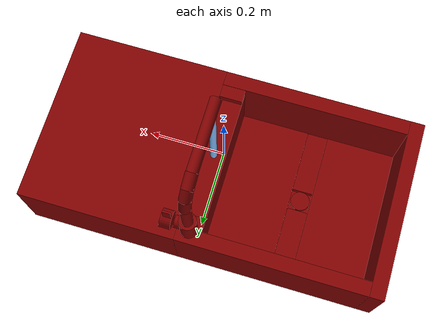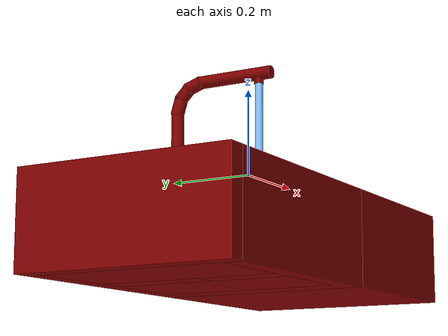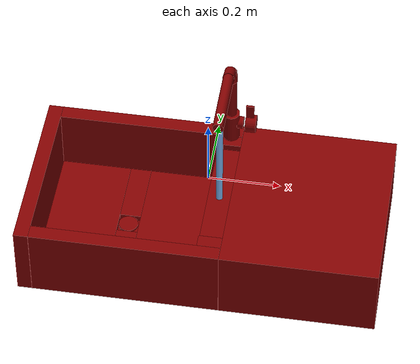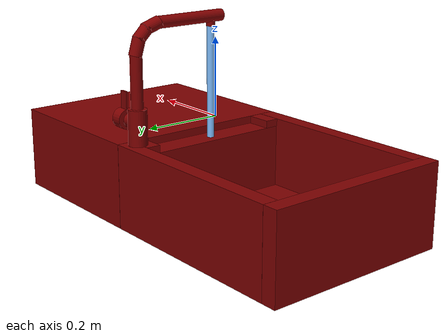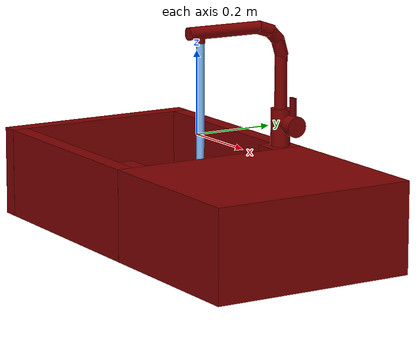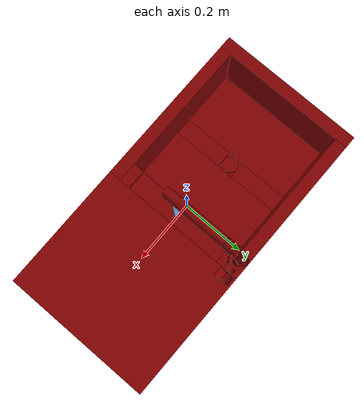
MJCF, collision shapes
<mujoco model="model">
  <compiler angle="radian"/>
  <asset>
    <mesh file="visuals/handle.obj" name="handle_vis"/>
    <mesh file="visuals/Body001.obj" name="Body001_vis"/>
    <mesh file="visuals/Funnel001.obj" name="Funnel001_vis"/>
    <mesh file="visuals/spout.obj" name="spout_vis"/>
    <texture file="visuals/T_BC001.png" name="Body001_material" type="2d"/>
    <material name="Body001_material" rgba="1 1 1 1.0" texture="Body001_material" shininess="0.1" specular="1"/>
    <texture file="visuals/T_BC001.png" name="handle_material" type="2d"/>
    <material name="handle_material" rgba="1 1 1 1.0" texture="handle_material" shininess="0.4472135901451111" specular="1"/>
    <texture file="visuals/T_BC001.png" name="Funnel001_material" type="2d"/>
    <material name="Funnel001_material" rgba="1 1 1 1.0" texture="Funnel001_material" shininess="0.4472135901451111" specular="1"/>
    <texture file="visuals/T_BC001.png" name="spout_material" type="2d"/>
    <material name="spout_material" rgba="1 1 1 1.0" texture="spout_material" shininess="0.4472135901451111" specular="1"/>
  </asset>
  <default>
    <default class="visual">
      <geom conaffinity="0" contype="0" group="1" type="mesh"/>
    </default>
    <default class="collision">
      <geom group="0" rgba="0.5 0 0 0.5"/>
    </default>
    <default class="spawn">
      <geom group="0" rgba="1 1 1 0.5" contype="0" conaffinity="0"/>
      <site group="0" rgba="1 1 1 0.5"/>
    </default>
    <default class="region">
      <geom group="1" conaffinity="0" contype="0" rgba="0 1 0 0"/>
    </default>
  </default>
  <worldbody>
    <body>
      <body name="object">
        <geom mesh="Body001_vis" type="mesh" solimp="0.998 0.998 0.001" solref="0.001 1" density="100" friction="0.95 0.3 0.1" class="visual" material="Body001_material"/>
        <geom class="collision" type="box" pos="-0.47984153032302856 -0.00012223422527313232 -0.15247033536434174" size="0.020158465951681137 0.2502790093421936 0.10864408314228058" quat="1.0 0.0 0.0 0.0"/>
        <geom class="collision" type="box" pos="0.2829028367996216 -0.00012223422527313232 -0.15247033536434174" size="0.21727114915847778 0.2502790093421936 0.10864408314228058" quat="1.0 0.0 0.0 0.0"/>
        <geom class="collision" type="box" pos="-0.1970946490764618 0.23000895977020264 -0.15247033536434174" size="0.2623617947101593 0.020147837698459625 0.10864408314228058" quat="1.0 0.0 0.0 0.0"/>
        <geom class="collision" type="box" pos="-0.1970946490764618 -0.23014047741889954 -0.15247033536434174" size="0.2623617947101593 0.020147837698459625 0.10864408314228058" quat="1.0 0.0 0.0 0.0"/>
        <geom class="collision" type="box" pos="0.03253858536481857 -0.00012223422527313232 -0.1622411161661148" size="0.03280166536569595 0.20761872828006744 0.09887330234050751" quat="1.0 0.0 0.0 0.0"/>
        <geom class="collision" type="box" pos="-0.10011659562587738 -0.00012223422527313232 -0.2450494021177292" size="0.09958492964506149 0.20973381400108337 0.016065016388893127" quat="1.0 0.0 0.0 0.0"/>
        <geom class="collision" type="box" pos="-0.35963553190231323 -0.00012223422527313232 -0.2450494021177292" size="0.09967264533042908 0.20973381400108337 0.016065016388893127" quat="1.0 0.0 0.0 0.0"/>
        <geom class="collision" type="box" pos="-0.2297610491514206 0.11972308158874512 -0.2450494021177292" size="0.029758721590042114 0.0898885652422905 0.016065016388893127" quat="1.0 0.0 0.0 0.0"/>
        <geom class="collision" type="box" pos="-0.2297610491514206 -0.1191495805978775 -0.2450494021177292" size="0.029758717864751816 0.0898885503411293 0.016065016388893127" quat="1.0 0.0 0.0 0.0"/>
        <geom class="collision" type="box" pos="-0.2297610491514206 -0.00018389150500297546 -0.25356096029281616" size="0.029758712276816368 0.02893916703760624 0.0075534675270318985" quat="1.0 0.0 0.0 0.0"/>
        <geom class="collision" type="box" pos="0.03253858536481857 -0.1915910691022873 -0.05384330451488495" size="0.03280166536569595 0.018068870529532433 0.009772112593054771" quat="1.0 0.0 0.0 0.0"/>
        <geom class="collision" type="box" pos="0.03253858536481857 0.19054359197616577 -0.05384330451488495" size="0.03280166536569595 0.018068870529532433 0.009772112593054771" quat="1.0 0.0 0.0 0.0"/>
        <geom class="collision" type="cylinder" pos="0.05368123576045036 0.21369318664073944 0.011515608988702297" size="0.01693006418645382 0.013475373387336731" quat="0.7071068286895752 -0.0 0.7071067690849304 0.0"/>
        <geom class="collision" type="cylinder" pos="0.032461803406476974 0.21311406791210175 0.0011270083487033844" size="0.023737186565995216 0.044803354889154434" quat="1.0 0.0 0.0 0.0"/>
        <body name="handle">
          <joint axis="1.0 0.0 0.0" pos="0.08548229187726974 0.21371683478355408 0.011512583121657372" limited="true" name="handle_joint_hinge_0" type="hinge" range="-0.7853981633974483 0.7853981633974483" damping="1" frictionloss="1" armature=".01" stiffness="0.05"/>
          <joint axis="0.0 1.0 0.0" pos="0.08548229187726974 0.21371683478355408 0.011512583121657372" limited="true" name="handle_joint_hinge_1" type="hinge" range="0.0 0.17453292519943295" damping="1" frictionloss="1" armature=".01" stiffness="0.05"/>
          <geom mesh="handle_vis" type="mesh" solimp="0.998 0.998 0.001" solref="0.001 1" density="100" friction="0.95 0.3 0.1" class="visual" material="handle_material"/>
          <geom class="collision" type="cylinder" pos="0.08852231502532959 0.21369318664073944 0.011515607126057148" size="0.025072814896702766 0.014828425832092762" quat="0.7071068286895752 -0.0 0.7071067690849304 0.0"/>
          <geom class="collision" type="box" pos="0.08552652597427368 0.21369318664073944 0.0564100407063961" size="0.01116210874170065 0.0027457294054329395 0.023502228781580925" quat="1.0 0.0 0.0 0.0"/>
        </body>
        <body name="Funnel001">
          <joint axis="0.0 0.0 1.0" pos="-0.23000048100948334 -1.6801059246063232e-06 -0.2335444986820221" limited="true" name="Funnel001_joint" range="0.0 0.1" type="slide" damping="1" frictionloss="1" armature=".01" stiffness="1" springref="-1"/>
          <geom mesh="Funnel001_vis" type="mesh" solimp="0.998 0.998 0.001" solref="0.001 1" density="100" friction="0.95 0.3 0.1" class="visual" material="Funnel001_material"/>
          <geom class="collision" type="cylinder" pos="-0.23017247021198273 7.511455623898655e-05 -0.2331548035144806" size="0.02753354236483574 0.00354643608443439" quat="1.0 0.0 0.0 0.0"/>
        </body>
        <body name="spout">
          <joint axis="0.0 0.0 1.0" pos="0.032499492168426514 0.21376092731952667 0.0456836074590683" limited="true" name="spout_joint" range="-1.0471975511965976 1.0471975511965976" type="hinge" damping="1" frictionloss="1" armature=".01" stiffness="0.05"/>
          <site type="cylinder" rgba="0.5 0.75 1 1" size="0.00939380843192339 0.2263500690460205" pos="0.03237338364124298 -0.010179191827774048 -0.003989666700363159" name="water"/>
          <geom mesh="spout_vis" type="mesh" solimp="0.998 0.998 0.001" solref="0.001 1" density="100" friction="0.95 0.3 0.1" class="visual" material="spout_material"/>
          <geom class="collision" type="cylinder" pos="0.032461799681186676 0.21341276168823242 0.11349723488092422" size="0.0151570038869977 0.06713789701461792" quat="1.0 0.0 0.0 0.0"/>
          <geom class="collision" type="cylinder" pos="0.032461803406476974 0.05527300387620926 0.24607570469379425" size="0.015157007612287998 0.09822708368301392" quat="0.7071067094802856 0.7071068286895752 0.0 0.0"/>
          <geom class="collision" type="cylinder" pos="0.032461803406476974 0.16716082394123077 0.24007335305213928" size="0.016099071130156517 0.021583354100584984" quat="0.8109227418899536 0.5851532220840454 0.0 0.0"/>
          <geom class="collision" type="cylinder" pos="0.032461803406476974 0.19277243316173553 0.223812535405159" size="0.016146332025527954 0.018798397853970528" quat="0.9223295450210571 0.3864041864871979 0.0 0.0"/>
          <geom class="collision" type="cylinder" pos="0.032461803406476974 0.20906147360801697 0.19464392960071564" size="0.016237551346421242 0.022440042346715927" quat="0.9891262054443359 0.14706917107105255 0.0 0.0"/>
          <geom class="collision" type="cylinder" pos="0.032461803406476974 -0.010156692937016487 0.23331309854984283" size="0.011198245920240879 0.01170522440224886" quat="7.549790126404332e-08 1.0 0.0 0.0"/>
        </body>
        <geom class="region" name="reg_main" type="box" pos="-1.4901161193847656e-08 0.0 -0.1527416706085205" size="0.5000000596046448 0.25000011920928955 0.10836213827133179"/>
        <geom class="region" name="reg_basin" type="box" pos="-0.22876262571662664 0.0007714405655860901 -0.13738230988383293" size="0.22455012891441584 0.20404253154993057 0.0894533134996891"/>
      </body>
    </body>
  </worldbody>
  <actuator>
    <motor name="handle_joint_hinge_0_actuator" joint="handle_joint_hinge_0" gear="10"/>
    <motor name="handle_joint_hinge_1_actuator" joint="handle_joint_hinge_1" gear="10"/>
    <motor name="Funnel001_joint_actuator" joint="Funnel001_joint" gear="10"/>
    <motor name="spout_joint_actuator" joint="spout_joint" gear="10"/>
  </actuator>
</mujoco>
